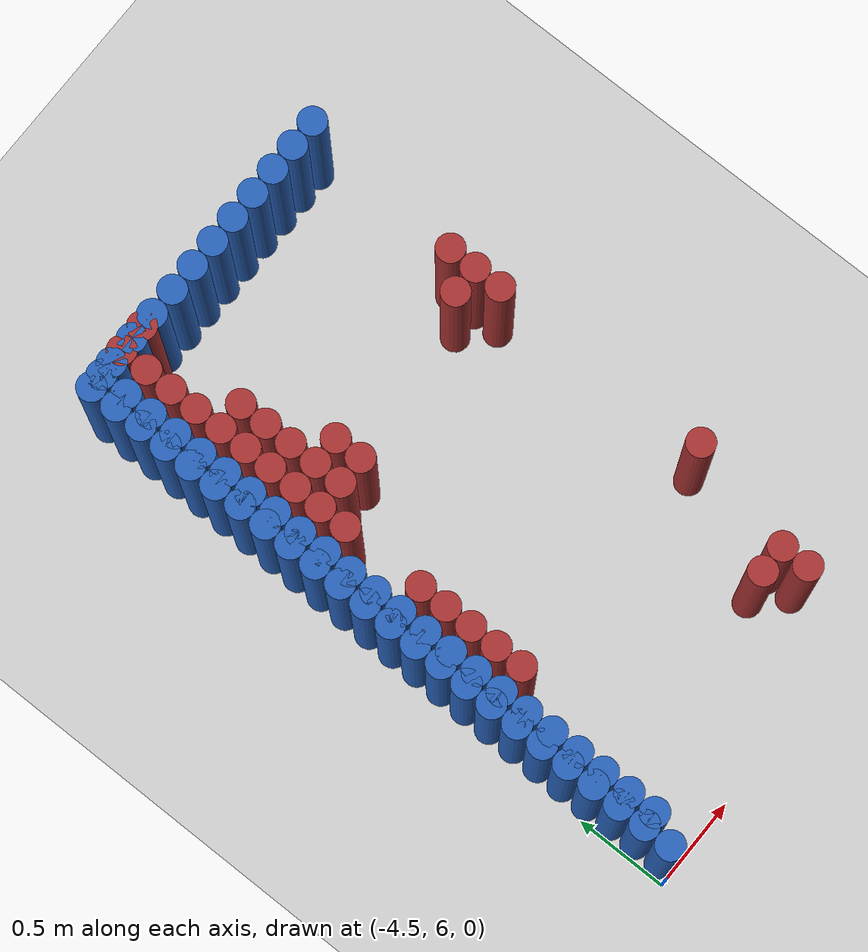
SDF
<sdf version="1.6">
 <world name="barn_world">
  <model name="ground_plane">
   <static>1</static>
   <link name="link">
    <collision name="collision">
     <geometry><plane><normal>0 0 1</normal><size>100 100</size></plane></geometry>
    </collision>
    <visual name="visual">
     <geometry><plane><normal>0 0 1</normal><size>100 100</size></plane></geometry>
     <material>
      <script><uri>file://media/materials/scripts/gazebo.material</uri><name>Gazebo/Grey</name></script>
     </material>
    </visual>
   </link>
  </model>
  <model name="unit_cylinder_133">
   <static>1</static>
   <pose>-4.3500 6.2250 0.5 0 0 0</pose>
   <link name="link">
    <collision name="collision">
     <geometry><cylinder><radius>0.075</radius><length>1</length></cylinder></geometry>
    </collision>
    <visual name="visual">
     <geometry><cylinder><radius>0.075</radius><length>1</length></cylinder></geometry>
     <material><ambient>0.152 0.379 0.72 1</ambient><diffuse>0.152 0.379 0.72 1</diffuse></material>
    </visual>
   </link>
  </model>
  <model name="unit_cylinder_134">
   <static>1</static>
   <pose>-4.3500 6.3750 0.5 0 0 0</pose>
   <link name="link">
    <collision name="collision">
     <geometry><cylinder><radius>0.075</radius><length>1</length></cylinder></geometry>
    </collision>
    <visual name="visual">
     <geometry><cylinder><radius>0.075</radius><length>1</length></cylinder></geometry>
     <material><ambient>0.152 0.379 0.72 1</ambient><diffuse>0.152 0.379 0.72 1</diffuse></material>
    </visual>
   </link>
  </model>
  <model name="unit_cylinder_135">
   <static>1</static>
   <pose>-4.3500 6.5250 0.5 0 0 0</pose>
   <link name="link">
    <collision name="collision">
     <geometry><cylinder><radius>0.075</radius><length>1</length></cylinder></geometry>
    </collision>
    <visual name="visual">
     <geometry><cylinder><radius>0.075</radius><length>1</length></cylinder></geometry>
     <material><ambient>0.152 0.379 0.72 1</ambient><diffuse>0.152 0.379 0.72 1</diffuse></material>
    </visual>
   </link>
  </model>
  <model name="unit_cylinder_136">
   <static>1</static>
   <pose>-4.3500 6.6750 0.5 0 0 0</pose>
   <link name="link">
    <collision name="collision">
     <geometry><cylinder><radius>0.075</radius><length>1</length></cylinder></geometry>
    </collision>
    <visual name="visual">
     <geometry><cylinder><radius>0.075</radius><length>1</length></cylinder></geometry>
     <material><ambient>0.152 0.379 0.72 1</ambient><diffuse>0.152 0.379 0.72 1</diffuse></material>
    </visual>
   </link>
  </model>
  <model name="unit_cylinder_137">
   <static>1</static>
   <pose>-4.3500 6.8250 0.5 0 0 0</pose>
   <link name="link">
    <collision name="collision">
     <geometry><cylinder><radius>0.075</radius><length>1</length></cylinder></geometry>
    </collision>
    <visual name="visual">
     <geometry><cylinder><radius>0.075</radius><length>1</length></cylinder></geometry>
     <material><ambient>0.152 0.379 0.72 1</ambient><diffuse>0.152 0.379 0.72 1</diffuse></material>
    </visual>
   </link>
  </model>
  <model name="unit_cylinder_138">
   <static>1</static>
   <pose>-4.3500 6.9750 0.5 0 0 0</pose>
   <link name="link">
    <collision name="collision">
     <geometry><cylinder><radius>0.075</radius><length>1</length></cylinder></geometry>
    </collision>
    <visual name="visual">
     <geometry><cylinder><radius>0.075</radius><length>1</length></cylinder></geometry>
     <material><ambient>0.152 0.379 0.72 1</ambient><diffuse>0.152 0.379 0.72 1</diffuse></material>
    </visual>
   </link>
  </model>
  <model name="unit_cylinder_139">
   <static>1</static>
   <pose>-4.3500 7.1250 0.5 0 0 0</pose>
   <link name="link">
    <collision name="collision">
     <geometry><cylinder><radius>0.075</radius><length>1</length></cylinder></geometry>
    </collision>
    <visual name="visual">
     <geometry><cylinder><radius>0.075</radius><length>1</length></cylinder></geometry>
     <material><ambient>0.152 0.379 0.72 1</ambient><diffuse>0.152 0.379 0.72 1</diffuse></material>
    </visual>
   </link>
  </model>
  <model name="unit_cylinder_140">
   <static>1</static>
   <pose>-4.3500 7.2750 0.5 0 0 0</pose>
   <link name="link">
    <collision name="collision">
     <geometry><cylinder><radius>0.075</radius><length>1</length></cylinder></geometry>
    </collision>
    <visual name="visual">
     <geometry><cylinder><radius>0.075</radius><length>1</length></cylinder></geometry>
     <material><ambient>0.152 0.379 0.72 1</ambient><diffuse>0.152 0.379 0.72 1</diffuse></material>
    </visual>
   </link>
  </model>
  <model name="unit_cylinder_141">
   <static>1</static>
   <pose>-4.3500 7.4250 0.5 0 0 0</pose>
   <link name="link">
    <collision name="collision">
     <geometry><cylinder><radius>0.075</radius><length>1</length></cylinder></geometry>
    </collision>
    <visual name="visual">
     <geometry><cylinder><radius>0.075</radius><length>1</length></cylinder></geometry>
     <material><ambient>0.152 0.379 0.72 1</ambient><diffuse>0.152 0.379 0.72 1</diffuse></material>
    </visual>
   </link>
  </model>
  <model name="unit_cylinder_142">
   <static>1</static>
   <pose>-4.3500 7.5750 0.5 0 0 0</pose>
   <link name="link">
    <collision name="collision">
     <geometry><cylinder><radius>0.075</radius><length>1</length></cylinder></geometry>
    </collision>
    <visual name="visual">
     <geometry><cylinder><radius>0.075</radius><length>1</length></cylinder></geometry>
     <material><ambient>0.152 0.379 0.72 1</ambient><diffuse>0.152 0.379 0.72 1</diffuse></material>
    </visual>
   </link>
  </model>
  <model name="unit_cylinder_143">
   <static>1</static>
   <pose>-4.3500 7.7250 0.5 0 0 0</pose>
   <link name="link">
    <collision name="collision">
     <geometry><cylinder><radius>0.075</radius><length>1</length></cylinder></geometry>
    </collision>
    <visual name="visual">
     <geometry><cylinder><radius>0.075</radius><length>1</length></cylinder></geometry>
     <material><ambient>0.152 0.379 0.72 1</ambient><diffuse>0.152 0.379 0.72 1</diffuse></material>
    </visual>
   </link>
  </model>
  <model name="unit_cylinder_144">
   <static>1</static>
   <pose>-4.3500 7.8750 0.5 0 0 0</pose>
   <link name="link">
    <collision name="collision">
     <geometry><cylinder><radius>0.075</radius><length>1</length></cylinder></geometry>
    </collision>
    <visual name="visual">
     <geometry><cylinder><radius>0.075</radius><length>1</length></cylinder></geometry>
     <material><ambient>0.152 0.379 0.72 1</ambient><diffuse>0.152 0.379 0.72 1</diffuse></material>
    </visual>
   </link>
  </model>
  <model name="unit_cylinder_145">
   <static>1</static>
   <pose>-4.3500 8.0250 0.5 0 0 0</pose>
   <link name="link">
    <collision name="collision">
     <geometry><cylinder><radius>0.075</radius><length>1</length></cylinder></geometry>
    </collision>
    <visual name="visual">
     <geometry><cylinder><radius>0.075</radius><length>1</length></cylinder></geometry>
     <material><ambient>0.152 0.379 0.72 1</ambient><diffuse>0.152 0.379 0.72 1</diffuse></material>
    </visual>
   </link>
  </model>
  <model name="unit_cylinder_146">
   <static>1</static>
   <pose>-4.3500 8.1750 0.5 0 0 0</pose>
   <link name="link">
    <collision name="collision">
     <geometry><cylinder><radius>0.075</radius><length>1</length></cylinder></geometry>
    </collision>
    <visual name="visual">
     <geometry><cylinder><radius>0.075</radius><length>1</length></cylinder></geometry>
     <material><ambient>0.152 0.379 0.72 1</ambient><diffuse>0.152 0.379 0.72 1</diffuse></material>
    </visual>
   </link>
  </model>
  <model name="unit_cylinder_147">
   <static>1</static>
   <pose>-4.3500 8.3250 0.5 0 0 0</pose>
   <link name="link">
    <collision name="collision">
     <geometry><cylinder><radius>0.075</radius><length>1</length></cylinder></geometry>
    </collision>
    <visual name="visual">
     <geometry><cylinder><radius>0.075</radius><length>1</length></cylinder></geometry>
     <material><ambient>0.152 0.379 0.72 1</ambient><diffuse>0.152 0.379 0.72 1</diffuse></material>
    </visual>
   </link>
  </model>
  <model name="unit_cylinder_148">
   <static>1</static>
   <pose>-4.3500 8.4750 0.5 0 0 0</pose>
   <link name="link">
    <collision name="collision">
     <geometry><cylinder><radius>0.075</radius><length>1</length></cylinder></geometry>
    </collision>
    <visual name="visual">
     <geometry><cylinder><radius>0.075</radius><length>1</length></cylinder></geometry>
     <material><ambient>0.152 0.379 0.72 1</ambient><diffuse>0.152 0.379 0.72 1</diffuse></material>
    </visual>
   </link>
  </model>
  <model name="unit_cylinder_149">
   <static>1</static>
   <pose>-4.3500 8.6250 0.5 0 0 0</pose>
   <link name="link">
    <collision name="collision">
     <geometry><cylinder><radius>0.075</radius><length>1</length></cylinder></geometry>
    </collision>
    <visual name="visual">
     <geometry><cylinder><radius>0.075</radius><length>1</length></cylinder></geometry>
     <material><ambient>0.152 0.379 0.72 1</ambient><diffuse>0.152 0.379 0.72 1</diffuse></material>
    </visual>
   </link>
  </model>
  <model name="unit_cylinder_150">
   <static>1</static>
   <pose>-4.3500 8.7750 0.5 0 0 0</pose>
   <link name="link">
    <collision name="collision">
     <geometry><cylinder><radius>0.075</radius><length>1</length></cylinder></geometry>
    </collision>
    <visual name="visual">
     <geometry><cylinder><radius>0.075</radius><length>1</length></cylinder></geometry>
     <material><ambient>0.152 0.379 0.72 1</ambient><diffuse>0.152 0.379 0.72 1</diffuse></material>
    </visual>
   </link>
  </model>
  <model name="unit_cylinder_151">
   <static>1</static>
   <pose>-4.3500 8.9250 0.5 0 0 0</pose>
   <link name="link">
    <collision name="collision">
     <geometry><cylinder><radius>0.075</radius><length>1</length></cylinder></geometry>
    </collision>
    <visual name="visual">
     <geometry><cylinder><radius>0.075</radius><length>1</length></cylinder></geometry>
     <material><ambient>0.152 0.379 0.72 1</ambient><diffuse>0.152 0.379 0.72 1</diffuse></material>
    </visual>
   </link>
  </model>
  <model name="unit_cylinder_152">
   <static>1</static>
   <pose>-4.3500 9.0750 0.5 0 0 0</pose>
   <link name="link">
    <collision name="collision">
     <geometry><cylinder><radius>0.075</radius><length>1</length></cylinder></geometry>
    </collision>
    <visual name="visual">
     <geometry><cylinder><radius>0.075</radius><length>1</length></cylinder></geometry>
     <material><ambient>0.152 0.379 0.72 1</ambient><diffuse>0.152 0.379 0.72 1</diffuse></material>
    </visual>
   </link>
  </model>
  <model name="unit_cylinder_153">
   <static>1</static>
   <pose>-4.3500 9.2250 0.5 0 0 0</pose>
   <link name="link">
    <collision name="collision">
     <geometry><cylinder><radius>0.075</radius><length>1</length></cylinder></geometry>
    </collision>
    <visual name="visual">
     <geometry><cylinder><radius>0.075</radius><length>1</length></cylinder></geometry>
     <material><ambient>0.152 0.379 0.72 1</ambient><diffuse>0.152 0.379 0.72 1</diffuse></material>
    </visual>
   </link>
  </model>
  <model name="unit_cylinder_154">
   <static>1</static>
   <pose>-4.3500 9.3750 0.5 0 0 0</pose>
   <link name="link">
    <collision name="collision">
     <geometry><cylinder><radius>0.075</radius><length>1</length></cylinder></geometry>
    </collision>
    <visual name="visual">
     <geometry><cylinder><radius>0.075</radius><length>1</length></cylinder></geometry>
     <material><ambient>0.152 0.379 0.72 1</ambient><diffuse>0.152 0.379 0.72 1</diffuse></material>
    </visual>
   </link>
  </model>
  <model name="unit_cylinder_155">
   <static>1</static>
   <pose>-4.3500 9.5250 0.5 0 0 0</pose>
   <link name="link">
    <collision name="collision">
     <geometry><cylinder><radius>0.075</radius><length>1</length></cylinder></geometry>
    </collision>
    <visual name="visual">
     <geometry><cylinder><radius>0.075</radius><length>1</length></cylinder></geometry>
     <material><ambient>0.152 0.379 0.72 1</ambient><diffuse>0.152 0.379 0.72 1</diffuse></material>
    </visual>
   </link>
  </model>
  <model name="unit_cylinder_161">
   <static>1</static>
   <pose>-4.2000 7.1250 0.5 0 0 0</pose>
   <link name="link">
    <collision name="collision">
     <geometry><cylinder><radius>0.075</radius><length>1</length></cylinder></geometry>
    </collision>
    <visual name="visual">
     <geometry><cylinder><radius>0.075</radius><length>1</length></cylinder></geometry>
     <material><ambient>0.648 0.192 0.192 1</ambient><diffuse>0.648 0.192 0.192 1</diffuse></material>
    </visual>
   </link>
  </model>
  <model name="unit_cylinder_162">
   <static>1</static>
   <pose>-4.2000 7.2750 0.5 0 0 0</pose>
   <link name="link">
    <collision name="collision">
     <geometry><cylinder><radius>0.075</radius><length>1</length></cylinder></geometry>
    </collision>
    <visual name="visual">
     <geometry><cylinder><radius>0.075</radius><length>1</length></cylinder></geometry>
     <material><ambient>0.648 0.192 0.192 1</ambient><diffuse>0.648 0.192 0.192 1</diffuse></material>
    </visual>
   </link>
  </model>
  <model name="unit_cylinder_163">
   <static>1</static>
   <pose>-4.2000 7.4250 0.5 0 0 0</pose>
   <link name="link">
    <collision name="collision">
     <geometry><cylinder><radius>0.075</radius><length>1</length></cylinder></geometry>
    </collision>
    <visual name="visual">
     <geometry><cylinder><radius>0.075</radius><length>1</length></cylinder></geometry>
     <material><ambient>0.648 0.192 0.192 1</ambient><diffuse>0.648 0.192 0.192 1</diffuse></material>
    </visual>
   </link>
  </model>
  <model name="unit_cylinder_164">
   <static>1</static>
   <pose>-4.2000 7.5750 0.5 0 0 0</pose>
   <link name="link">
    <collision name="collision">
     <geometry><cylinder><radius>0.075</radius><length>1</length></cylinder></geometry>
    </collision>
    <visual name="visual">
     <geometry><cylinder><radius>0.075</radius><length>1</length></cylinder></geometry>
     <material><ambient>0.648 0.192 0.192 1</ambient><diffuse>0.648 0.192 0.192 1</diffuse></material>
    </visual>
   </link>
  </model>
  <model name="unit_cylinder_165">
   <static>1</static>
   <pose>-4.2000 7.7250 0.5 0 0 0</pose>
   <link name="link">
    <collision name="collision">
     <geometry><cylinder><radius>0.075</radius><length>1</length></cylinder></geometry>
    </collision>
    <visual name="visual">
     <geometry><cylinder><radius>0.075</radius><length>1</length></cylinder></geometry>
     <material><ambient>0.648 0.192 0.192 1</ambient><diffuse>0.648 0.192 0.192 1</diffuse></material>
    </visual>
   </link>
  </model>
  <model name="unit_cylinder_166">
   <static>1</static>
   <pose>-4.2000 8.1750 0.5 0 0 0</pose>
   <link name="link">
    <collision name="collision">
     <geometry><cylinder><radius>0.075</radius><length>1</length></cylinder></geometry>
    </collision>
    <visual name="visual">
     <geometry><cylinder><radius>0.075</radius><length>1</length></cylinder></geometry>
     <material><ambient>0.648 0.192 0.192 1</ambient><diffuse>0.648 0.192 0.192 1</diffuse></material>
    </visual>
   </link>
  </model>
  <model name="unit_cylinder_167">
   <static>1</static>
   <pose>-4.2000 8.3250 0.5 0 0 0</pose>
   <link name="link">
    <collision name="collision">
     <geometry><cylinder><radius>0.075</radius><length>1</length></cylinder></geometry>
    </collision>
    <visual name="visual">
     <geometry><cylinder><radius>0.075</radius><length>1</length></cylinder></geometry>
     <material><ambient>0.648 0.192 0.192 1</ambient><diffuse>0.648 0.192 0.192 1</diffuse></material>
    </visual>
   </link>
  </model>
  <model name="unit_cylinder_168">
   <static>1</static>
   <pose>-4.2000 8.4750 0.5 0 0 0</pose>
   <link name="link">
    <collision name="collision">
     <geometry><cylinder><radius>0.075</radius><length>1</length></cylinder></geometry>
    </collision>
    <visual name="visual">
     <geometry><cylinder><radius>0.075</radius><length>1</length></cylinder></geometry>
     <material><ambient>0.648 0.192 0.192 1</ambient><diffuse>0.648 0.192 0.192 1</diffuse></material>
    </visual>
   </link>
  </model>
  <model name="unit_cylinder_169">
   <static>1</static>
   <pose>-4.2000 8.6250 0.5 0 0 0</pose>
   <link name="link">
    <collision name="collision">
     <geometry><cylinder><radius>0.075</radius><length>1</length></cylinder></geometry>
    </collision>
    <visual name="visual">
     <geometry><cylinder><radius>0.075</radius><length>1</length></cylinder></geometry>
     <material><ambient>0.648 0.192 0.192 1</ambient><diffuse>0.648 0.192 0.192 1</diffuse></material>
    </visual>
   </link>
  </model>
  <model name="unit_cylinder_170">
   <static>1</static>
   <pose>-4.2000 8.7750 0.5 0 0 0</pose>
   <link name="link">
    <collision name="collision">
     <geometry><cylinder><radius>0.075</radius><length>1</length></cylinder></geometry>
    </collision>
    <visual name="visual">
     <geometry><cylinder><radius>0.075</radius><length>1</length></cylinder></geometry>
     <material><ambient>0.648 0.192 0.192 1</ambient><diffuse>0.648 0.192 0.192 1</diffuse></material>
    </visual>
   </link>
  </model>
  <model name="unit_cylinder_171">
   <static>1</static>
   <pose>-4.2000 8.9250 0.5 0 0 0</pose>
   <link name="link">
    <collision name="collision">
     <geometry><cylinder><radius>0.075</radius><length>1</length></cylinder></geometry>
    </collision>
    <visual name="visual">
     <geometry><cylinder><radius>0.075</radius><length>1</length></cylinder></geometry>
     <material><ambient>0.648 0.192 0.192 1</ambient><diffuse>0.648 0.192 0.192 1</diffuse></material>
    </visual>
   </link>
  </model>
  <model name="unit_cylinder_172">
   <static>1</static>
   <pose>-4.2000 9.0750 0.5 0 0 0</pose>
   <link name="link">
    <collision name="collision">
     <geometry><cylinder><radius>0.075</radius><length>1</length></cylinder></geometry>
    </collision>
    <visual name="visual">
     <geometry><cylinder><radius>0.075</radius><length>1</length></cylinder></geometry>
     <material><ambient>0.648 0.192 0.192 1</ambient><diffuse>0.648 0.192 0.192 1</diffuse></material>
    </visual>
   </link>
  </model>
  <model name="unit_cylinder_173">
   <static>1</static>
   <pose>-4.2000 9.2250 0.5 0 0 0</pose>
   <link name="link">
    <collision name="collision">
     <geometry><cylinder><radius>0.075</radius><length>1</length></cylinder></geometry>
    </collision>
    <visual name="visual">
     <geometry><cylinder><radius>0.075</radius><length>1</length></cylinder></geometry>
     <material><ambient>0.648 0.192 0.192 1</ambient><diffuse>0.648 0.192 0.192 1</diffuse></material>
    </visual>
   </link>
  </model>
  <model name="unit_cylinder_174">
   <static>1</static>
   <pose>-4.2000 9.3750 0.5 0 0 0</pose>
   <link name="link">
    <collision name="collision">
     <geometry><cylinder><radius>0.075</radius><length>1</length></cylinder></geometry>
    </collision>
    <visual name="visual">
     <geometry><cylinder><radius>0.075</radius><length>1</length></cylinder></geometry>
     <material><ambient>0.648 0.192 0.192 1</ambient><diffuse>0.648 0.192 0.192 1</diffuse></material>
    </visual>
   </link>
  </model>
  <model name="unit_cylinder_175">
   <static>1</static>
   <pose>-4.2000 9.5250 0.5 0 0 0</pose>
   <link name="link">
    <collision name="collision">
     <geometry><cylinder><radius>0.075</radius><length>1</length></cylinder></geometry>
    </collision>
    <visual name="visual">
     <geometry><cylinder><radius>0.075</radius><length>1</length></cylinder></geometry>
     <material><ambient>0.648 0.192 0.192 1</ambient><diffuse>0.648 0.192 0.192 1</diffuse></material>
    </visual>
   </link>
  </model>
  <model name="unit_cylinder_177">
   <static>1</static>
   <pose>-4.0500 8.3250 0.5 0 0 0</pose>
   <link name="link">
    <collision name="collision">
     <geometry><cylinder><radius>0.075</radius><length>1</length></cylinder></geometry>
    </collision>
    <visual name="visual">
     <geometry><cylinder><radius>0.075</radius><length>1</length></cylinder></geometry>
     <material><ambient>0.648 0.192 0.192 1</ambient><diffuse>0.648 0.192 0.192 1</diffuse></material>
    </visual>
   </link>
  </model>
  <model name="unit_cylinder_178">
   <static>1</static>
   <pose>-4.0500 8.4750 0.5 0 0 0</pose>
   <link name="link">
    <collision name="collision">
     <geometry><cylinder><radius>0.075</radius><length>1</length></cylinder></geometry>
    </collision>
    <visual name="visual">
     <geometry><cylinder><radius>0.075</radius><length>1</length></cylinder></geometry>
     <material><ambient>0.648 0.192 0.192 1</ambient><diffuse>0.648 0.192 0.192 1</diffuse></material>
    </visual>
   </link>
  </model>
  <model name="unit_cylinder_179">
   <static>1</static>
   <pose>-4.0500 8.6250 0.5 0 0 0</pose>
   <link name="link">
    <collision name="collision">
     <geometry><cylinder><radius>0.075</radius><length>1</length></cylinder></geometry>
    </collision>
    <visual name="visual">
     <geometry><cylinder><radius>0.075</radius><length>1</length></cylinder></geometry>
     <material><ambient>0.648 0.192 0.192 1</ambient><diffuse>0.648 0.192 0.192 1</diffuse></material>
    </visual>
   </link>
  </model>
  <model name="unit_cylinder_180">
   <static>1</static>
   <pose>-4.0500 8.7750 0.5 0 0 0</pose>
   <link name="link">
    <collision name="collision">
     <geometry><cylinder><radius>0.075</radius><length>1</length></cylinder></geometry>
    </collision>
    <visual name="visual">
     <geometry><cylinder><radius>0.075</radius><length>1</length></cylinder></geometry>
     <material><ambient>0.648 0.192 0.192 1</ambient><diffuse>0.648 0.192 0.192 1</diffuse></material>
    </visual>
   </link>
  </model>
  <model name="unit_cylinder_181">
   <static>1</static>
   <pose>-4.0500 8.9250 0.5 0 0 0</pose>
   <link name="link">
    <collision name="collision">
     <geometry><cylinder><radius>0.075</radius><length>1</length></cylinder></geometry>
    </collision>
    <visual name="visual">
     <geometry><cylinder><radius>0.075</radius><length>1</length></cylinder></geometry>
     <material><ambient>0.648 0.192 0.192 1</ambient><diffuse>0.648 0.192 0.192 1</diffuse></material>
    </visual>
   </link>
  </model>
  <model name="unit_cylinder_182">
   <static>1</static>
   <pose>-4.0500 9.5250 0.5 0 0 0</pose>
   <link name="link">
    <collision name="collision">
     <geometry><cylinder><radius>0.075</radius><length>1</length></cylinder></geometry>
    </collision>
    <visual name="visual">
     <geometry><cylinder><radius>0.075</radius><length>1</length></cylinder></geometry>
     <material><ambient>0.648 0.192 0.192 1</ambient><diffuse>0.648 0.192 0.192 1</diffuse></material>
    </visual>
   </link>
  </model>
  <model name="unit_cylinder_184">
   <static>1</static>
   <pose>-3.9000 8.3250 0.5 0 0 0</pose>
   <link name="link">
    <collision name="collision">
     <geometry><cylinder><radius>0.075</radius><length>1</length></cylinder></geometry>
    </collision>
    <visual name="visual">
     <geometry><cylinder><radius>0.075</radius><length>1</length></cylinder></geometry>
     <material><ambient>0.648 0.192 0.192 1</ambient><diffuse>0.648 0.192 0.192 1</diffuse></material>
    </visual>
   </link>
  </model>
  <model name="unit_cylinder_185">
   <static>1</static>
   <pose>-3.9000 8.4750 0.5 0 0 0</pose>
   <link name="link">
    <collision name="collision">
     <geometry><cylinder><radius>0.075</radius><length>1</length></cylinder></geometry>
    </collision>
    <visual name="visual">
     <geometry><cylinder><radius>0.075</radius><length>1</length></cylinder></geometry>
     <material><ambient>0.648 0.192 0.192 1</ambient><diffuse>0.648 0.192 0.192 1</diffuse></material>
    </visual>
   </link>
  </model>
  <model name="unit_cylinder_190">
   <static>1</static>
   <pose>-3.1500 6.5250 0.5 0 0 0</pose>
   <link name="link">
    <collision name="collision">
     <geometry><cylinder><radius>0.075</radius><length>1</length></cylinder></geometry>
    </collision>
    <visual name="visual">
     <geometry><cylinder><radius>0.075</radius><length>1</length></cylinder></geometry>
     <material><ambient>0.648 0.192 0.192 1</ambient><diffuse>0.648 0.192 0.192 1</diffuse></material>
    </visual>
   </link>
  </model>
  <model name="unit_cylinder_193">
   <static>1</static>
   <pose>-3.0000 6.3750 0.5 0 0 0</pose>
   <link name="link">
    <collision name="collision">
     <geometry><cylinder><radius>0.075</radius><length>1</length></cylinder></geometry>
    </collision>
    <visual name="visual">
     <geometry><cylinder><radius>0.075</radius><length>1</length></cylinder></geometry>
     <material><ambient>0.648 0.192 0.192 1</ambient><diffuse>0.648 0.192 0.192 1</diffuse></material>
    </visual>
   </link>
  </model>
  <model name="unit_cylinder_194">
   <static>1</static>
   <pose>-3.0000 6.5250 0.5 0 0 0</pose>
   <link name="link">
    <collision name="collision">
     <geometry><cylinder><radius>0.075</radius><length>1</length></cylinder></geometry>
    </collision>
    <visual name="visual">
     <geometry><cylinder><radius>0.075</radius><length>1</length></cylinder></geometry>
     <material><ambient>0.648 0.192 0.192 1</ambient><diffuse>0.648 0.192 0.192 1</diffuse></material>
    </visual>
   </link>
  </model>
  <model name="unit_cylinder_195">
   <static>1</static>
   <pose>-3.0000 8.4750 0.5 0 0 0</pose>
   <link name="link">
    <collision name="collision">
     <geometry><cylinder><radius>0.075</radius><length>1</length></cylinder></geometry>
    </collision>
    <visual name="visual">
     <geometry><cylinder><radius>0.075</radius><length>1</length></cylinder></geometry>
     <material><ambient>0.648 0.192 0.192 1</ambient><diffuse>0.648 0.192 0.192 1</diffuse></material>
    </visual>
   </link>
  </model>
  <model name="unit_cylinder_197">
   <static>1</static>
   <pose>-2.8500 7.1250 0.5 0 0 0</pose>
   <link name="link">
    <collision name="collision">
     <geometry><cylinder><radius>0.075</radius><length>1</length></cylinder></geometry>
    </collision>
    <visual name="visual">
     <geometry><cylinder><radius>0.075</radius><length>1</length></cylinder></geometry>
     <material><ambient>0.648 0.192 0.192 1</ambient><diffuse>0.648 0.192 0.192 1</diffuse></material>
    </visual>
   </link>
  </model>
  <model name="unit_cylinder_198">
   <static>1</static>
   <pose>-2.8500 8.3250 0.5 0 0 0</pose>
   <link name="link">
    <collision name="collision">
     <geometry><cylinder><radius>0.075</radius><length>1</length></cylinder></geometry>
    </collision>
    <visual name="visual">
     <geometry><cylinder><radius>0.075</radius><length>1</length></cylinder></geometry>
     <material><ambient>0.648 0.192 0.192 1</ambient><diffuse>0.648 0.192 0.192 1</diffuse></material>
    </visual>
   </link>
  </model>
  <model name="unit_cylinder_199">
   <static>1</static>
   <pose>-2.8500 8.4750 0.5 0 0 0</pose>
   <link name="link">
    <collision name="collision">
     <geometry><cylinder><radius>0.075</radius><length>1</length></cylinder></geometry>
    </collision>
    <visual name="visual">
     <geometry><cylinder><radius>0.075</radius><length>1</length></cylinder></geometry>
     <material><ambient>0.648 0.192 0.192 1</ambient><diffuse>0.648 0.192 0.192 1</diffuse></material>
    </visual>
   </link>
  </model>
  <model name="unit_cylinder_200">
   <static>1</static>
   <pose>-2.8500 8.6250 0.5 0 0 0</pose>
   <link name="link">
    <collision name="collision">
     <geometry><cylinder><radius>0.075</radius><length>1</length></cylinder></geometry>
    </collision>
    <visual name="visual">
     <geometry><cylinder><radius>0.075</radius><length>1</length></cylinder></geometry>
     <material><ambient>0.648 0.192 0.192 1</ambient><diffuse>0.648 0.192 0.192 1</diffuse></material>
    </visual>
   </link>
  </model>
  <model name="unit_cylinder_287">
   <static>1</static>
   <pose>-2.7750 9.5250 0.5 0 0 0</pose>
   <link name="link">
    <collision name="collision">
     <geometry><cylinder><radius>0.075</radius><length>1</length></cylinder></geometry>
    </collision>
    <visual name="visual">
     <geometry><cylinder><radius>0.075</radius><length>1</length></cylinder></geometry>
     <material><ambient>0.152 0.379 0.72 1</ambient><diffuse>0.152 0.379 0.72 1</diffuse></material>
    </visual>
   </link>
  </model>
  <model name="unit_cylinder_288">
   <static>1</static>
   <pose>-2.9250 9.5250 0.5 0 0 0</pose>
   <link name="link">
    <collision name="collision">
     <geometry><cylinder><radius>0.075</radius><length>1</length></cylinder></geometry>
    </collision>
    <visual name="visual">
     <geometry><cylinder><radius>0.075</radius><length>1</length></cylinder></geometry>
     <material><ambient>0.152 0.379 0.72 1</ambient><diffuse>0.152 0.379 0.72 1</diffuse></material>
    </visual>
   </link>
  </model>
  <model name="unit_cylinder_289">
   <static>1</static>
   <pose>-3.0750 9.5250 0.5 0 0 0</pose>
   <link name="link">
    <collision name="collision">
     <geometry><cylinder><radius>0.075</radius><length>1</length></cylinder></geometry>
    </collision>
    <visual name="visual">
     <geometry><cylinder><radius>0.075</radius><length>1</length></cylinder></geometry>
     <material><ambient>0.152 0.379 0.72 1</ambient><diffuse>0.152 0.379 0.72 1</diffuse></material>
    </visual>
   </link>
  </model>
  <model name="unit_cylinder_290">
   <static>1</static>
   <pose>-3.2250 9.5250 0.5 0 0 0</pose>
   <link name="link">
    <collision name="collision">
     <geometry><cylinder><radius>0.075</radius><length>1</length></cylinder></geometry>
    </collision>
    <visual name="visual">
     <geometry><cylinder><radius>0.075</radius><length>1</length></cylinder></geometry>
     <material><ambient>0.152 0.379 0.72 1</ambient><diffuse>0.152 0.379 0.72 1</diffuse></material>
    </visual>
   </link>
  </model>
  <model name="unit_cylinder_291">
   <static>1</static>
   <pose>-3.3750 9.5250 0.5 0 0 0</pose>
   <link name="link">
    <collision name="collision">
     <geometry><cylinder><radius>0.075</radius><length>1</length></cylinder></geometry>
    </collision>
    <visual name="visual">
     <geometry><cylinder><radius>0.075</radius><length>1</length></cylinder></geometry>
     <material><ambient>0.152 0.379 0.72 1</ambient><diffuse>0.152 0.379 0.72 1</diffuse></material>
    </visual>
   </link>
  </model>
  <model name="unit_cylinder_292">
   <static>1</static>
   <pose>-3.5250 9.5250 0.5 0 0 0</pose>
   <link name="link">
    <collision name="collision">
     <geometry><cylinder><radius>0.075</radius><length>1</length></cylinder></geometry>
    </collision>
    <visual name="visual">
     <geometry><cylinder><radius>0.075</radius><length>1</length></cylinder></geometry>
     <material><ambient>0.152 0.379 0.72 1</ambient><diffuse>0.152 0.379 0.72 1</diffuse></material>
    </visual>
   </link>
  </model>
  <model name="unit_cylinder_293">
   <static>1</static>
   <pose>-3.6750 9.5250 0.5 0 0 0</pose>
   <link name="link">
    <collision name="collision">
     <geometry><cylinder><radius>0.075</radius><length>1</length></cylinder></geometry>
    </collision>
    <visual name="visual">
     <geometry><cylinder><radius>0.075</radius><length>1</length></cylinder></geometry>
     <material><ambient>0.152 0.379 0.72 1</ambient><diffuse>0.152 0.379 0.72 1</diffuse></material>
    </visual>
   </link>
  </model>
  <model name="unit_cylinder_294">
   <static>1</static>
   <pose>-3.8250 9.5250 0.5 0 0 0</pose>
   <link name="link">
    <collision name="collision">
     <geometry><cylinder><radius>0.075</radius><length>1</length></cylinder></geometry>
    </collision>
    <visual name="visual">
     <geometry><cylinder><radius>0.075</radius><length>1</length></cylinder></geometry>
     <material><ambient>0.152 0.379 0.72 1</ambient><diffuse>0.152 0.379 0.72 1</diffuse></material>
    </visual>
   </link>
  </model>
  <model name="unit_cylinder_295">
   <static>1</static>
   <pose>-3.9750 9.5250 0.5 0 0 0</pose>
   <link name="link">
    <collision name="collision">
     <geometry><cylinder><radius>0.075</radius><length>1</length></cylinder></geometry>
    </collision>
    <visual name="visual">
     <geometry><cylinder><radius>0.075</radius><length>1</length></cylinder></geometry>
     <material><ambient>0.152 0.379 0.72 1</ambient><diffuse>0.152 0.379 0.72 1</diffuse></material>
    </visual>
   </link>
  </model>
  <model name="unit_cylinder_296">
   <static>1</static>
   <pose>-4.1250 9.5250 0.5 0 0 0</pose>
   <link name="link">
    <collision name="collision">
     <geometry><cylinder><radius>0.075</radius><length>1</length></cylinder></geometry>
    </collision>
    <visual name="visual">
     <geometry><cylinder><radius>0.075</radius><length>1</length></cylinder></geometry>
     <material><ambient>0.152 0.379 0.72 1</ambient><diffuse>0.152 0.379 0.72 1</diffuse></material>
    </visual>
   </link>
  </model>
  <model name="unit_cylinder_297">
   <static>1</static>
   <pose>-4.2750 9.5250 0.5 0 0 0</pose>
   <link name="link">
    <collision name="collision">
     <geometry><cylinder><radius>0.075</radius><length>1</length></cylinder></geometry>
    </collision>
    <visual name="visual">
     <geometry><cylinder><radius>0.075</radius><length>1</length></cylinder></geometry>
     <material><ambient>0.152 0.379 0.72 1</ambient><diffuse>0.152 0.379 0.72 1</diffuse></material>
    </visual>
   </link>
  </model>
  <model name="unit_cylinder_298">
   <static>1</static>
   <pose>-4.4250 9.5250 0.5 0 0 0</pose>
   <link name="link">
    <collision name="collision">
     <geometry><cylinder><radius>0.075</radius><length>1</length></cylinder></geometry>
    </collision>
    <visual name="visual">
     <geometry><cylinder><radius>0.075</radius><length>1</length></cylinder></geometry>
     <material><ambient>0.152 0.379 0.72 1</ambient><diffuse>0.152 0.379 0.72 1</diffuse></material>
    </visual>
   </link>
  </model>
  <model name="unit_cylinder_312">
   <static>1</static>
   <pose>-4.4250 6.0750 0.5 0 0 0</pose>
   <link name="link">
    <collision name="collision">
     <geometry><cylinder><radius>0.075</radius><length>1</length></cylinder></geometry>
    </collision>
    <visual name="visual">
     <geometry><cylinder><radius>0.075</radius><length>1</length></cylinder></geometry>
     <material><ambient>0.152 0.379 0.72 1</ambient><diffuse>0.152 0.379 0.72 1</diffuse></material>
    </visual>
   </link>
  </model>
  <model name="unit_cylinder_314">
   <static>1</static>
   <pose>-4.4250 6.2250 0.5 0 0 0</pose>
   <link name="link">
    <collision name="collision">
     <geometry><cylinder><radius>0.075</radius><length>1</length></cylinder></geometry>
    </collision>
    <visual name="visual">
     <geometry><cylinder><radius>0.075</radius><length>1</length></cylinder></geometry>
     <material><ambient>0.152 0.379 0.72 1</ambient><diffuse>0.152 0.379 0.72 1</diffuse></material>
    </visual>
   </link>
  </model>
  <model name="unit_cylinder_316">
   <static>1</static>
   <pose>-4.4250 6.3750 0.5 0 0 0</pose>
   <link name="link">
    <collision name="collision">
     <geometry><cylinder><radius>0.075</radius><length>1</length></cylinder></geometry>
    </collision>
    <visual name="visual">
     <geometry><cylinder><radius>0.075</radius><length>1</length></cylinder></geometry>
     <material><ambient>0.152 0.379 0.72 1</ambient><diffuse>0.152 0.379 0.72 1</diffuse></material>
    </visual>
   </link>
  </model>
  <model name="unit_cylinder_318">
   <static>1</static>
   <pose>-4.4250 6.5250 0.5 0 0 0</pose>
   <link name="link">
    <collision name="collision">
     <geometry><cylinder><radius>0.075</radius><length>1</length></cylinder></geometry>
    </collision>
    <visual name="visual">
     <geometry><cylinder><radius>0.075</radius><length>1</length></cylinder></geometry>
     <material><ambient>0.152 0.379 0.72 1</ambient><diffuse>0.152 0.379 0.72 1</diffuse></material>
    </visual>
   </link>
  </model>
  <model name="unit_cylinder_320">
   <static>1</static>
   <pose>-4.4250 6.6750 0.5 0 0 0</pose>
   <link name="link">
    <collision name="collision">
     <geometry><cylinder><radius>0.075</radius><length>1</length></cylinder></geometry>
    </collision>
    <visual name="visual">
     <geometry><cylinder><radius>0.075</radius><length>1</length></cylinder></geometry>
     <material><ambient>0.152 0.379 0.72 1</ambient><diffuse>0.152 0.379 0.72 1</diffuse></material>
    </visual>
   </link>
  </model>
  <model name="unit_cylinder_322">
   <static>1</static>
   <pose>-4.4250 6.8250 0.5 0 0 0</pose>
   <link name="link">
    <collision name="collision">
     <geometry><cylinder><radius>0.075</radius><length>1</length></cylinder></geometry>
    </collision>
    <visual name="visual">
     <geometry><cylinder><radius>0.075</radius><length>1</length></cylinder></geometry>
     <material><ambient>0.152 0.379 0.72 1</ambient><diffuse>0.152 0.379 0.72 1</diffuse></material>
    </visual>
   </link>
  </model>
  <model name="unit_cylinder_324">
   <static>1</static>
   <pose>-4.4250 6.9750 0.5 0 0 0</pose>
   <link name="link">
    <collision name="collision">
     <geometry><cylinder><radius>0.075</radius><length>1</length></cylinder></geometry>
    </collision>
    <visual name="visual">
     <geometry><cylinder><radius>0.075</radius><length>1</length></cylinder></geometry>
     <material><ambient>0.152 0.379 0.72 1</ambient><diffuse>0.152 0.379 0.72 1</diffuse></material>
    </visual>
   </link>
  </model>
  <model name="unit_cylinder_326">
   <static>1</static>
   <pose>-4.4250 7.1250 0.5 0 0 0</pose>
   <link name="link">
    <collision name="collision">
     <geometry><cylinder><radius>0.075</radius><length>1</length></cylinder></geometry>
    </collision>
    <visual name="visual">
     <geometry><cylinder><radius>0.075</radius><length>1</length></cylinder></geometry>
     <material><ambient>0.152 0.379 0.72 1</ambient><diffuse>0.152 0.379 0.72 1</diffuse></material>
    </visual>
   </link>
  </model>
  <model name="unit_cylinder_328">
   <static>1</static>
   <pose>-4.4250 7.2750 0.5 0 0 0</pose>
   <link name="link">
    <collision name="collision">
     <geometry><cylinder><radius>0.075</radius><length>1</length></cylinder></geometry>
    </collision>
    <visual name="visual">
     <geometry><cylinder><radius>0.075</radius><length>1</length></cylinder></geometry>
     <material><ambient>0.152 0.379 0.72 1</ambient><diffuse>0.152 0.379 0.72 1</diffuse></material>
    </visual>
   </link>
  </model>
  <model name="unit_cylinder_330">
   <static>1</static>
   <pose>-4.4250 7.4250 0.5 0 0 0</pose>
   <link name="link">
    <collision name="collision">
     <geometry><cylinder><radius>0.075</radius><length>1</length></cylinder></geometry>
    </collision>
    <visual name="visual">
     <geometry><cylinder><radius>0.075</radius><length>1</length></cylinder></geometry>
     <material><ambient>0.152 0.379 0.72 1</ambient><diffuse>0.152 0.379 0.72 1</diffuse></material>
    </visual>
   </link>
  </model>
  <model name="unit_cylinder_332">
   <static>1</static>
   <pose>-4.4250 7.5750 0.5 0 0 0</pose>
   <link name="link">
    <collision name="collision">
     <geometry><cylinder><radius>0.075</radius><length>1</length></cylinder></geometry>
    </collision>
    <visual name="visual">
     <geometry><cylinder><radius>0.075</radius><length>1</length></cylinder></geometry>
     <material><ambient>0.152 0.379 0.72 1</ambient><diffuse>0.152 0.379 0.72 1</diffuse></material>
    </visual>
   </link>
  </model>
  <model name="unit_cylinder_334">
   <static>1</static>
   <pose>-4.4250 7.7250 0.5 0 0 0</pose>
   <link name="link">
    <collision name="collision">
     <geometry><cylinder><radius>0.075</radius><length>1</length></cylinder></geometry>
    </collision>
    <visual name="visual">
     <geometry><cylinder><radius>0.075</radius><length>1</length></cylinder></geometry>
     <material><ambient>0.152 0.379 0.72 1</ambient><diffuse>0.152 0.379 0.72 1</diffuse></material>
    </visual>
   </link>
  </model>
  <model name="unit_cylinder_336">
   <static>1</static>
   <pose>-4.4250 7.8750 0.5 0 0 0</pose>
   <link name="link">
    <collision name="collision">
     <geometry><cylinder><radius>0.075</radius><length>1</length></cylinder></geometry>
    </collision>
    <visual name="visual">
     <geometry><cylinder><radius>0.075</radius><length>1</length></cylinder></geometry>
     <material><ambient>0.152 0.379 0.72 1</ambient><diffuse>0.152 0.379 0.72 1</diffuse></material>
    </visual>
   </link>
  </model>
  <model name="unit_cylinder_338">
   <static>1</static>
   <pose>-4.4250 8.0250 0.5 0 0 0</pose>
   <link name="link">
    <collision name="collision">
     <geometry><cylinder><radius>0.075</radius><length>1</length></cylinder></geometry>
    </collision>
    <visual name="visual">
     <geometry><cylinder><radius>0.075</radius><length>1</length></cylinder></geometry>
     <material><ambient>0.152 0.379 0.72 1</ambient><diffuse>0.152 0.379 0.72 1</diffuse></material>
    </visual>
   </link>
  </model>
  <model name="unit_cylinder_340">
   <static>1</static>
   <pose>-4.4250 8.1750 0.5 0 0 0</pose>
   <link name="link">
    <collision name="collision">
     <geometry><cylinder><radius>0.075</radius><length>1</length></cylinder></geometry>
    </collision>
    <visual name="visual">
     <geometry><cylinder><radius>0.075</radius><length>1</length></cylinder></geometry>
     <material><ambient>0.152 0.379 0.72 1</ambient><diffuse>0.152 0.379 0.72 1</diffuse></material>
    </visual>
   </link>
  </model>
  <model name="unit_cylinder_342">
   <static>1</static>
   <pose>-4.4250 8.3250 0.5 0 0 0</pose>
   <link name="link">
    <collision name="collision">
     <geometry><cylinder><radius>0.075</radius><length>1</length></cylinder></geometry>
    </collision>
    <visual name="visual">
     <geometry><cylinder><radius>0.075</radius><length>1</length></cylinder></geometry>
     <material><ambient>0.152 0.379 0.72 1</ambient><diffuse>0.152 0.379 0.72 1</diffuse></material>
    </visual>
   </link>
  </model>
  <model name="unit_cylinder_344">
   <static>1</static>
   <pose>-4.4250 8.4750 0.5 0 0 0</pose>
   <link name="link">
    <collision name="collision">
     <geometry><cylinder><radius>0.075</radius><length>1</length></cylinder></geometry>
    </collision>
    <visual name="visual">
     <geometry><cylinder><radius>0.075</radius><length>1</length></cylinder></geometry>
     <material><ambient>0.152 0.379 0.72 1</ambient><diffuse>0.152 0.379 0.72 1</diffuse></material>
    </visual>
   </link>
  </model>
  <model name="unit_cylinder_346">
   <static>1</static>
   <pose>-4.4250 8.6250 0.5 0 0 0</pose>
   <link name="link">
    <collision name="collision">
     <geometry><cylinder><radius>0.075</radius><length>1</length></cylinder></geometry>
    </collision>
    <visual name="visual">
     <geometry><cylinder><radius>0.075</radius><length>1</length></cylinder></geometry>
     <material><ambient>0.152 0.379 0.72 1</ambient><diffuse>0.152 0.379 0.72 1</diffuse></material>
    </visual>
   </link>
  </model>
  <model name="unit_cylinder_348">
   <static>1</static>
   <pose>-4.4250 8.7750 0.5 0 0 0</pose>
   <link name="link">
    <collision name="collision">
     <geometry><cylinder><radius>0.075</radius><length>1</length></cylinder></geometry>
    </collision>
    <visual name="visual">
     <geometry><cylinder><radius>0.075</radius><length>1</length></cylinder></geometry>
     <material><ambient>0.152 0.379 0.72 1</ambient><diffuse>0.152 0.379 0.72 1</diffuse></material>
    </visual>
   </link>
  </model>
  <model name="unit_cylinder_350">
   <static>1</static>
   <pose>-4.4250 8.9250 0.5 0 0 0</pose>
   <link name="link">
    <collision name="collision">
     <geometry><cylinder><radius>0.075</radius><length>1</length></cylinder></geometry>
    </collision>
    <visual name="visual">
     <geometry><cylinder><radius>0.075</radius><length>1</length></cylinder></geometry>
     <material><ambient>0.152 0.379 0.72 1</ambient><diffuse>0.152 0.379 0.72 1</diffuse></material>
    </visual>
   </link>
  </model>
  <model name="unit_cylinder_352">
   <static>1</static>
   <pose>-4.4250 9.0750 0.5 0 0 0</pose>
   <link name="link">
    <collision name="collision">
     <geometry><cylinder><radius>0.075</radius><length>1</length></cylinder></geometry>
    </collision>
    <visual name="visual">
     <geometry><cylinder><radius>0.075</radius><length>1</length></cylinder></geometry>
     <material><ambient>0.152 0.379 0.72 1</ambient><diffuse>0.152 0.379 0.72 1</diffuse></material>
    </visual>
   </link>
  </model>
  <model name="unit_cylinder_354">
   <static>1</static>
   <pose>-4.4250 9.2250 0.5 0 0 0</pose>
   <link name="link">
    <collision name="collision">
     <geometry><cylinder><radius>0.075</radius><length>1</length></cylinder></geometry>
    </collision>
    <visual name="visual">
     <geometry><cylinder><radius>0.075</radius><length>1</length></cylinder></geometry>
     <material><ambient>0.152 0.379 0.72 1</ambient><diffuse>0.152 0.379 0.72 1</diffuse></material>
    </visual>
   </link>
  </model>
  <model name="unit_cylinder_356">
   <static>1</static>
   <pose>-4.4250 9.3750 0.5 0 0 0</pose>
   <link name="link">
    <collision name="collision">
     <geometry><cylinder><radius>0.075</radius><length>1</length></cylinder></geometry>
    </collision>
    <visual name="visual">
     <geometry><cylinder><radius>0.075</radius><length>1</length></cylinder></geometry>
     <material><ambient>0.152 0.379 0.72 1</ambient><diffuse>0.152 0.379 0.72 1</diffuse></material>
    </visual>
   </link>
  </model>
 </world>
</sdf>
